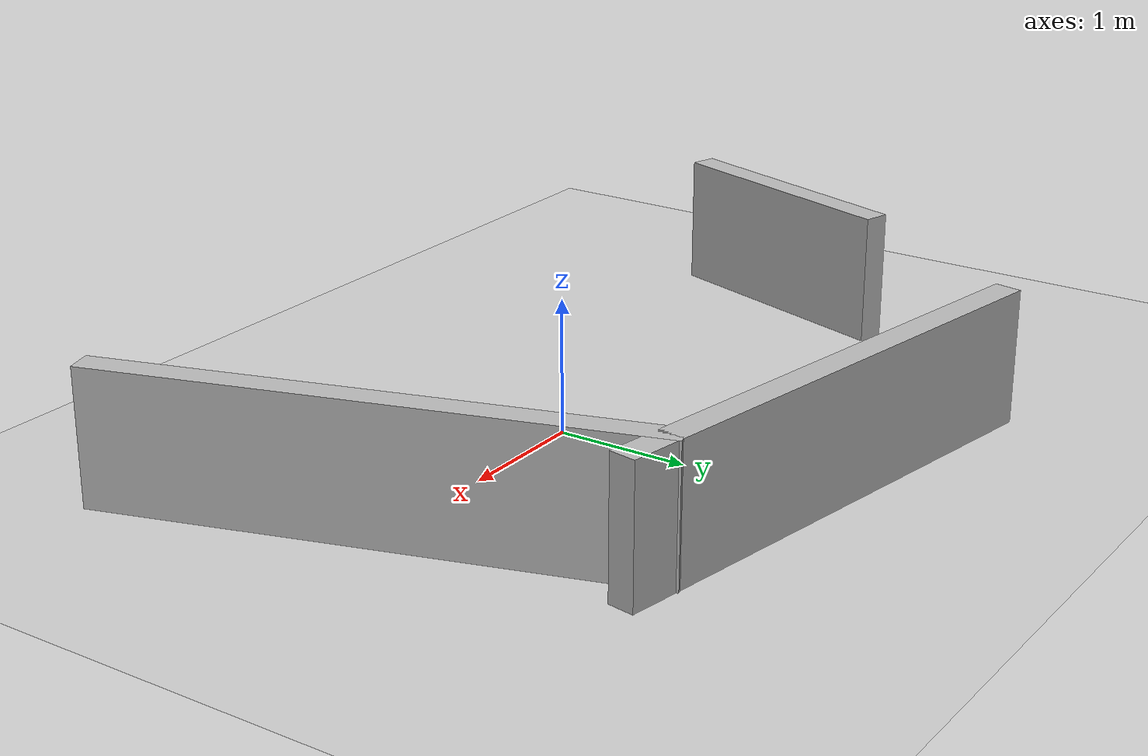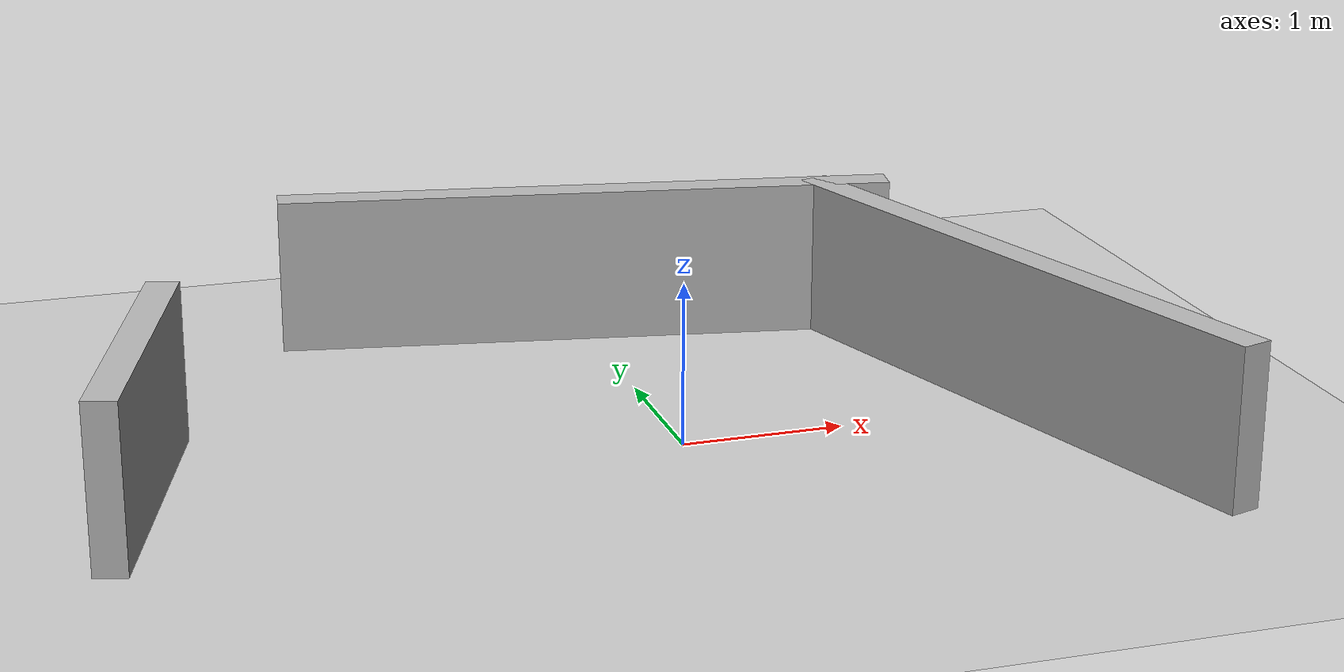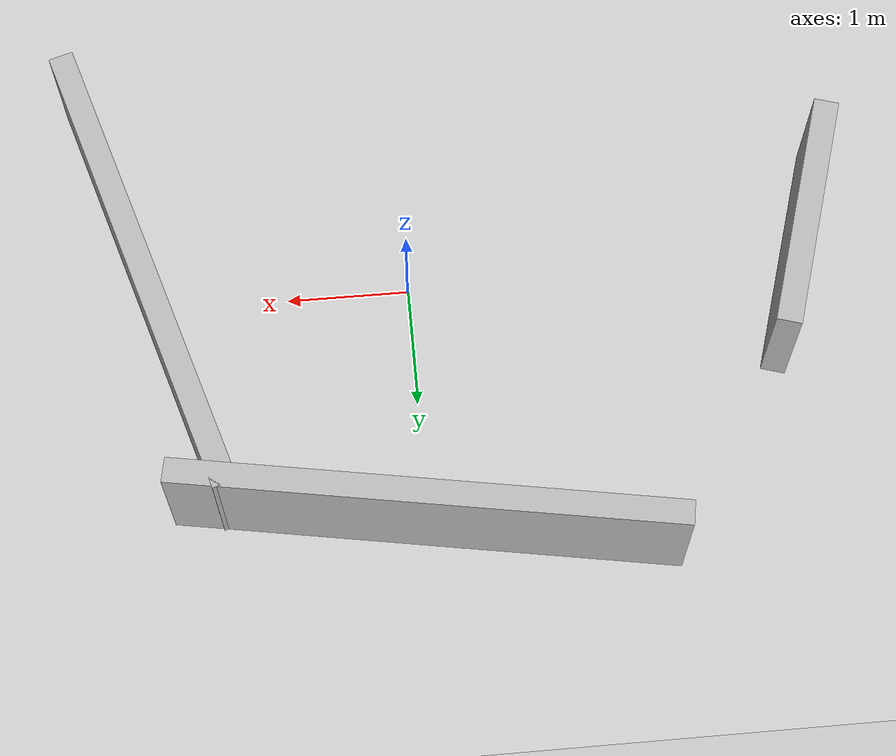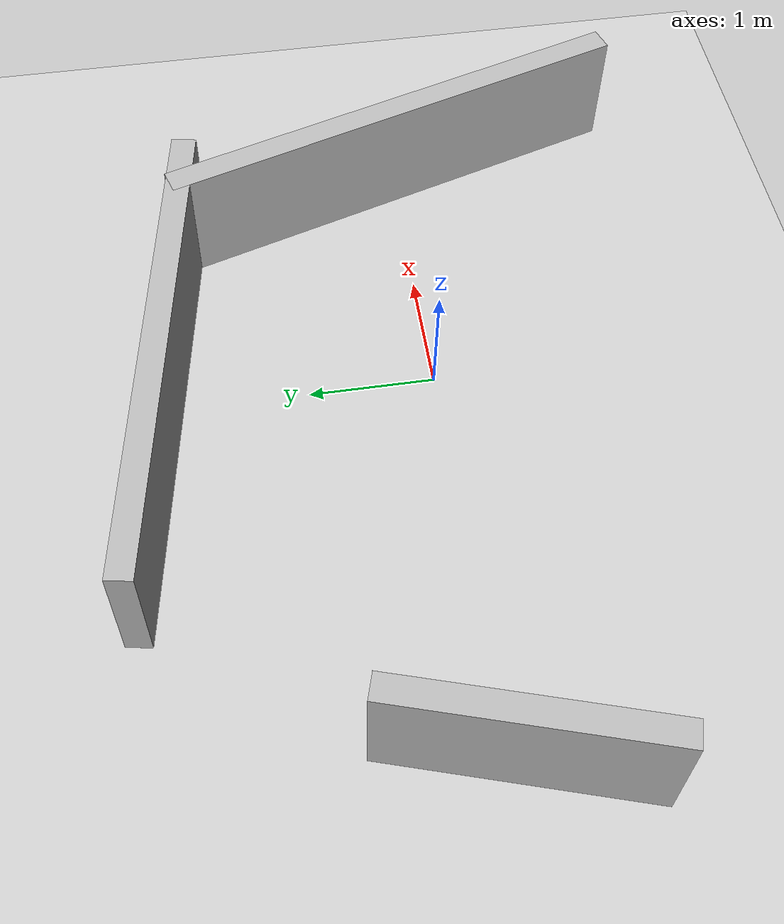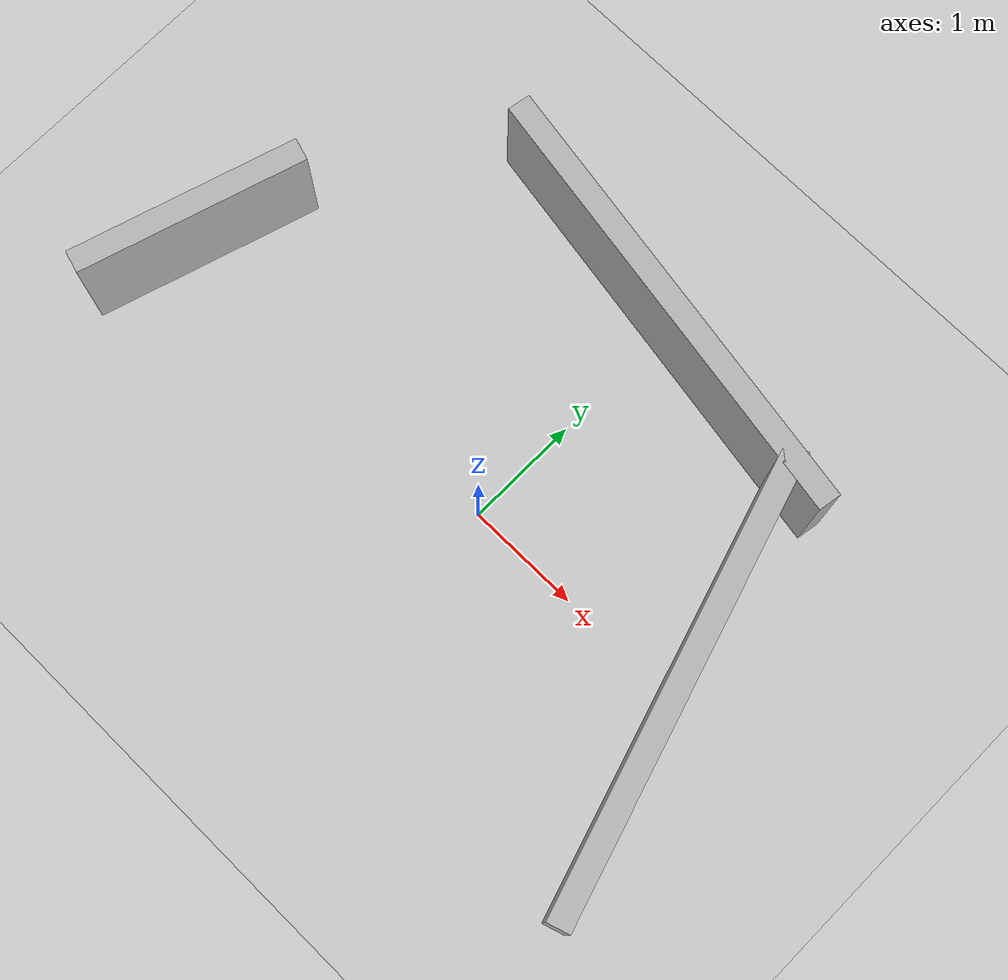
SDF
<?xml version="1.0" ?>
<sdf version="1.4">
  <!-- We use a custom world for the rrbot so that the camera angle is launched correctly -->

  <world name="default">

    <physics type="ode">
      <max_step_size>0.001</max_step_size>
      <real_time_factor>1</real_time_factor>
      <real_time_update_rate>1000</real_time_update_rate>
      <ode>
        <solver>
          <type>quick</type>
          <iters>50</iters>
          <sor>1.4</sor>
        </solver>
        <constraints>
          <cfm>0</cfm>
          <erp>1</erp>
          <contact_max_correcting_vel>0</contact_max_correcting_vel>
          <contact_surface_layer>0</contact_surface_layer>
        </constraints>
      </ode>
    </physics>

    <include>
      <uri>model://ground_plane</uri>
    </include>

    <!-- Global light source -->
    <include>
      <uri>model://sun</uri>
    </include>

    <!-- wall 1 -->
    <model name='wall1'>
      <pose>2.1 0 0.5 0 0 0.3</pose>
      <link name='link'>
        <inertial>
          <mass>1</mass>
          <inertia>
            <ixx>0.166667</ixx>
            <ixy>0</ixy>
            <ixz>0</ixz>
            <iyy>0.166667</iyy>
            <iyz>0</iyz>
            <izz>0.166667</izz>
          </inertia>
        </inertial>
        <collision name='collision'>
          <geometry>
            <box>
              <size>0.2 4 1</size>
            </box>
          </geometry>
        </collision>
        <visual name='visual'>
          <geometry>
            <box>
              <size>0.2 4 1</size>
            </box>
          </geometry>
        </visual>
        <gravity>1</gravity>
      </link>
    </model>

    <!-- wall 2 -->
    <model name='wall2'>
      <pose>0 2.1 0.5 0 0 1.4</pose>
      <link name='link'>
        <inertial>
          <mass>1</mass>
          <inertia>
            <ixx>0.166667</ixx>
            <ixy>0</ixy>
            <ixz>0</ixz>
            <iyy>0.166667</iyy>
            <iyz>0</iyz>
            <izz>0.166667</izz>
          </inertia>
        </inertial>
        <collision name='collision'>
          <geometry>
            <box>
              <size>0.2 4 1</size>
            </box>
          </geometry>
        </collision>
        <visual name='visual'>
          <geometry>
            <box>
              <size>0.2 4 1</size>
            </box>
          </geometry>
        </visual>
        <gravity>1</gravity>
      </link>
    </model>

    <!-- wall 3 -->
    <model name='wall3'>
      <pose>-3.2 0 0.5 0 0 -0.3</pose>
      <link name='link'>
        <inertial>
          <mass>1</mass>
          <inertia>
            <ixx>0.166667</ixx>
            <ixy>0</ixy>
            <ixz>0</ixz>
            <iyy>0.166667</iyy>
            <iyz>0</iyz>
            <izz>0.166667</izz>
          </inertia>
        </inertial>
        <collision name='collision'>
          <geometry>
            <box>
              <size>0.2 2 1</size>
            </box>
          </geometry>
        </collision>
        <visual name='visual'>
          <geometry>
            <box>
              <size>0.2 2 1</size>
            </box>
          </geometry>
        </visual>
        <gravity>1</gravity>
      </link>
    </model>

    <!-- Focus camera on tall pendulum -->
    <gui fullscreen='0'>
      <camera name='user_camera'>
        <pose>4.927360 -4.376610 3.740080 0.000000 0.275643 2.356190</pose>
        <view_controller>orbit</view_controller>
      </camera>
    </gui>

  </world>
</sdf>
